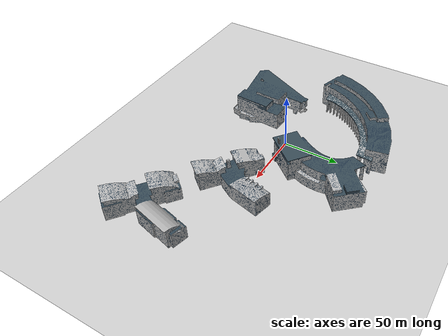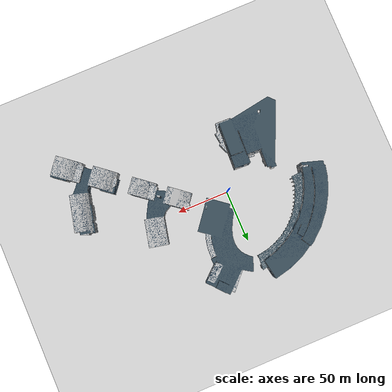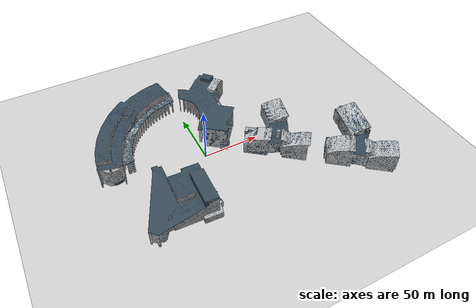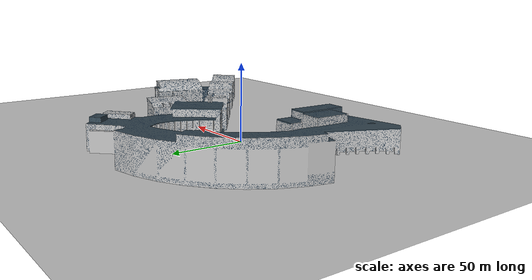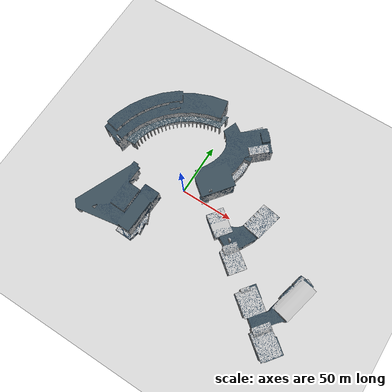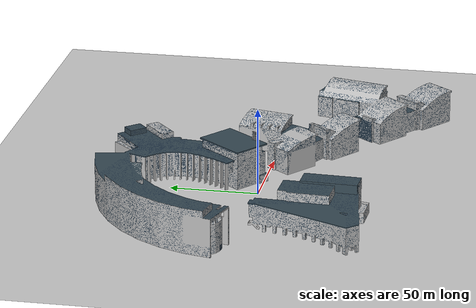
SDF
<?xml version="1.0" ?>
<sdf version="1.4">
  <world name="default">
    <include>
      <uri>model://ground_plane</uri>
    </include>
    <include>
      <uri>model://sun</uri>
    </include>
    <include>
      <uri>model://olin</uri>
      <name>olin</name>
      <pose>10 10 -2 0 0 0</pose>
    </include>
  </world>
</sdf>

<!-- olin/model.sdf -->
<sdf version="1.5">
  <model name="Olin">
    <static>true</static>
    <link name="link">
      <!-- TODO: Add collision box -->

      <visual name="visual">
        <geometry>
          <mesh>
            <uri>model://olin/meshes/full_campus.dae</uri>
          </mesh>
        </geometry>
      </visual>
    </link>
  </model>
</sdf>
